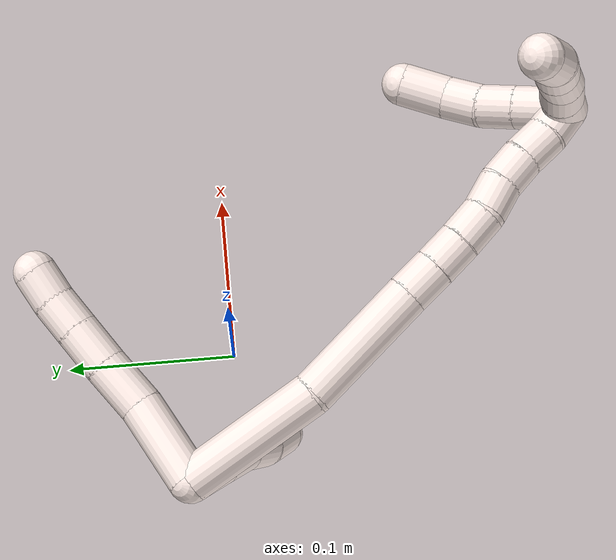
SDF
<sdf version="1.7">
 <world name="default">
  <model name="11">
   <static>0</static>
   <link name="11">
    <collision name="collision-cylinder-e_1_2_8">
     <pose>0.022656 0.011937 0.000423 -1.53537 1.08562 -1.05453</pose>
     <geometry><cylinder><radius>0.0125</radius><length>0.051223</length></cylinder></geometry>
     <surface>
      <friction><ode><mu>1.16</mu><mu2>1.16</mu2><slip1>0</slip1><slip2>0</slip2></ode></friction>
      <contact><ode><kp>1e+06</kp><kd>1</kd><max_vel>0</max_vel><min_depth>0.001</min_depth></ode></contact>
     </surface>
    </collision>
    <visual name="visual-cylinder-e_1_2_8">
     <pose>0.022656 0.011937 0.000423 -1.53537 1.08562 -1.05453</pose>
     <geometry><cylinder><radius>0.0125</radius><length>0.051223</length></cylinder></geometry>
     <material><ambient>1 0.933333 0.909804 1</ambient></material>
    </visual>
    <collision name="collision-cylinder-e_2_8_9">
     <pose>0.058511 0.031541 0.003684 -1.21634 1.01626 -0.739752</pose>
     <geometry><cylinder><radius>0.0125</radius><length>0.031053</length></cylinder></geometry>
     <surface>
      <friction><ode><mu>1.16</mu><mu2>1.16</mu2><slip1>0</slip1><slip2>0</slip2></ode></friction>
      <contact><ode><kp>1e+06</kp><kd>1</kd><max_vel>0</max_vel><min_depth>0.001</min_depth></ode></contact>
     </surface>
    </collision>
    <visual name="visual-cylinder-e_2_8_9">
     <pose>0.058511 0.031541 0.003684 -1.21634 1.01626 -0.739752</pose>
     <geometry><cylinder><radius>0.0125</radius><length>0.031053</length></cylinder></geometry>
     <material><ambient>1 0.933333 0.909804 1</ambient></material>
    </visual>
    <collision name="collision-cylinder-e_3_9_10">
     <pose>0.083178 0.045183 0.008929 -1.18777 1.05895 -0.752606</pose>
     <geometry><cylinder><radius>0.0125</radius><length>0.026304</length></cylinder></geometry>
     <surface>
      <friction><ode><mu>1.16</mu><mu2>1.16</mu2><slip1>0</slip1><slip2>0</slip2></ode></friction>
      <contact><ode><kp>1e+06</kp><kd>1</kd><max_vel>0</max_vel><min_depth>0.001</min_depth></ode></contact>
     </surface>
    </collision>
    <visual name="visual-cylinder-e_3_9_10">
     <pose>0.083178 0.045183 0.008929 -1.18777 1.05895 -0.752606</pose>
     <geometry><cylinder><radius>0.0125</radius><length>0.026304</length></cylinder></geometry>
     <material><ambient>1 0.933333 0.909804 1</ambient></material>
    </visual>
    <collision name="collision-cylinder-e_4_10_11">
     <pose>0.103967 0.055997 0.013297 -1.18585 1.06026 -0.75222</pose>
     <geometry><cylinder><radius>0.0125</radius><length>0.021371</length></cylinder></geometry>
     <surface>
      <friction><ode><mu>1.16</mu><mu2>1.16</mu2><slip1>0</slip1><slip2>0</slip2></ode></friction>
      <contact><ode><kp>1e+06</kp><kd>1</kd><max_vel>0</max_vel><min_depth>0.001</min_depth></ode></contact>
     </surface>
    </collision>
    <visual name="visual-cylinder-e_4_10_11">
     <pose>0.103967 0.055997 0.013297 -1.18585 1.06026 -0.75222</pose>
     <geometry><cylinder><radius>0.0125</radius><length>0.021371</length></cylinder></geometry>
     <material><ambient>1 0.933333 0.909804 1</ambient></material>
    </visual>
    <collision name="collision-cylinder-e_5_11_6">
     <pose>0.12253 0.064166 0.017262 -1.02884 1.17266 -0.718275</pose>
     <geometry><cylinder><radius>0.0125</radius><length>0.020049</length></cylinder></geometry>
     <surface>
      <friction><ode><mu>1.16</mu><mu2>1.16</mu2><slip1>0</slip1><slip2>0</slip2></ode></friction>
      <contact><ode><kp>1e+06</kp><kd>1</kd><max_vel>0</max_vel><min_depth>0.001</min_depth></ode></contact>
     </surface>
    </collision>
    <visual name="visual-cylinder-e_5_11_6">
     <pose>0.12253 0.064166 0.017262 -1.02884 1.17266 -0.718275</pose>
     <geometry><cylinder><radius>0.0125</radius><length>0.020049</length></cylinder></geometry>
     <material><ambient>1 0.933333 0.909804 1</ambient></material>
    </visual>
    <collision name="collision-cylinder-e_1_2_12">
     <pose>0.003013 0.001083 -0.015198 -3.07046 0.19521 -2.44446</pose>
     <geometry><cylinder><radius>0.0125</radius><length>0.031064</length></cylinder></geometry>
     <surface>
      <friction><ode><mu>1.16</mu><mu2>1.16</mu2><slip1>0</slip1><slip2>0</slip2></ode></friction>
      <contact><ode><kp>1e+06</kp><kd>1</kd><max_vel>0</max_vel><min_depth>0.001</min_depth></ode></contact>
     </surface>
    </collision>
    <visual name="visual-cylinder-e_1_2_12">
     <pose>0.003013 0.001083 -0.015198 -3.07046 0.19521 -2.44446</pose>
     <geometry><cylinder><radius>0.0125</radius><length>0.031064</length></cylinder></geometry>
     <material><ambient>1 0.933333 0.909804 1</ambient></material>
    </visual>
    <collision name="collision-cylinder-e_2_12_13">
     <pose>0.00854 0.001111 -0.041045 3.04288 0.230782 2.33586</pose>
     <geometry><cylinder><radius>0.0125</radius><length>0.021983</length></cylinder></geometry>
     <surface>
      <friction><ode><mu>1.16</mu><mu2>1.16</mu2><slip1>0</slip1><slip2>0</slip2></ode></friction>
      <contact><ode><kp>1e+06</kp><kd>1</kd><max_vel>0</max_vel><min_depth>0.001</min_depth></ode></contact>
     </surface>
    </collision>
    <visual name="visual-cylinder-e_2_12_13">
     <pose>0.00854 0.001111 -0.041045 3.04288 0.230782 2.33586</pose>
     <geometry><cylinder><radius>0.0125</radius><length>0.021983</length></cylinder></geometry>
     <material><ambient>1 0.933333 0.909804 1</ambient></material>
    </visual>
    <collision name="collision-cylinder-e_3_13_14">
     <pose>0.011013 0.00152 -0.063073 -3.01372 -0.003537 0.055237</pose>
     <geometry><cylinder><radius>0.0125</radius><length>0.022949</length></cylinder></geometry>
     <surface>
      <friction><ode><mu>1.16</mu><mu2>1.16</mu2><slip1>0</slip1><slip2>0</slip2></ode></friction>
      <contact><ode><kp>1e+06</kp><kd>1</kd><max_vel>0</max_vel><min_depth>0.001</min_depth></ode></contact>
     </surface>
    </collision>
    <visual name="visual-cylinder-e_3_13_14">
     <pose>0.011013 0.00152 -0.063073 -3.01372 -0.003537 0.055237</pose>
     <geometry><cylinder><radius>0.0125</radius><length>0.022949</length></cylinder></geometry>
     <material><ambient>1 0.933333 0.909804 1</ambient></material>
    </visual>
    <collision name="collision-cylinder-e_4_14_5">
     <pose>0.013296 0.004598 -0.086118 -3.00403 0.194844 -1.91356</pose>
     <geometry><cylinder><radius>0.0125</radius><length>0.024004</length></cylinder></geometry>
     <surface>
      <friction><ode><mu>1.16</mu><mu2>1.16</mu2><slip1>0</slip1><slip2>0</slip2></ode></friction>
      <contact><ode><kp>1e+06</kp><kd>1</kd><max_vel>0</max_vel><min_depth>0.001</min_depth></ode></contact>
     </surface>
    </collision>
    <visual name="visual-cylinder-e_4_14_5">
     <pose>0.013296 0.004598 -0.086118 -3.00403 0.194844 -1.91356</pose>
     <geometry><cylinder><radius>0.0125</radius><length>0.024004</length></cylinder></geometry>
     <material><ambient>1 0.933333 0.909804 1</ambient></material>
    </visual>
    <collision name="collision-cylinder-e_1_2_15">
     <pose>0.016969 -0.031751 -0.019763 2.12755 0.425955 0.742557</pose>
     <geometry><cylinder><radius>0.0125</radius><length>0.082137</length></cylinder></geometry>
     <surface>
      <friction><ode><mu>1.16</mu><mu2>1.16</mu2><slip1>0</slip1><slip2>0</slip2></ode></friction>
      <contact><ode><kp>1e+06</kp><kd>1</kd><max_vel>0</max_vel><min_depth>0.001</min_depth></ode></contact>
     </surface>
    </collision>
    <visual name="visual-cylinder-e_1_2_15">
     <pose>0.016969 -0.031751 -0.019763 2.12755 0.425955 0.742557</pose>
     <geometry><cylinder><radius>0.0125</radius><length>0.082137</length></cylinder></geometry>
     <material><ambient>1 0.933333 0.909804 1</ambient></material>
    </visual>
    <collision name="collision-cylinder-e_2_15_16">
     <pose>0.055516 -0.08777 -0.058763 2.24105 0.608552 1.15224</pose>
     <geometry><cylinder><radius>0.0125</radius><length>0.07549</length></cylinder></geometry>
     <surface>
      <friction><ode><mu>1.16</mu><mu2>1.16</mu2><slip1>0</slip1><slip2>0</slip2></ode></friction>
      <contact><ode><kp>1e+06</kp><kd>1</kd><max_vel>0</max_vel><min_depth>0.001</min_depth></ode></contact>
     </surface>
    </collision>
    <visual name="visual-cylinder-e_2_15_16">
     <pose>0.055516 -0.08777 -0.058763 2.24105 0.608552 1.15224</pose>
     <geometry><cylinder><radius>0.0125</radius><length>0.07549</length></cylinder></geometry>
     <material><ambient>1 0.933333 0.909804 1</ambient></material>
    </visual>
    <collision name="collision-cylinder-e_3_16_17">
     <pose>0.083092 -0.119099 -0.083453 2.22851 0.591975 1.11127</pose>
     <geometry><cylinder><radius>0.0125</radius><length>0.021498</length></cylinder></geometry>
     <surface>
      <friction><ode><mu>1.16</mu><mu2>1.16</mu2><slip1>0</slip1><slip2>0</slip2></ode></friction>
      <contact><ode><kp>1e+06</kp><kd>1</kd><max_vel>0</max_vel><min_depth>0.001</min_depth></ode></contact>
     </surface>
    </collision>
    <visual name="visual-cylinder-e_3_16_17">
     <pose>0.083092 -0.119099 -0.083453 2.22851 0.591975 1.11127</pose>
     <geometry><cylinder><radius>0.0125</radius><length>0.021498</length></cylinder></geometry>
     <material><ambient>1 0.933333 0.909804 1</ambient></material>
    </visual>
    <collision name="collision-cylinder-e_4_17_18">
     <pose>0.094946 -0.13269 -0.094046 2.23749 0.613742 1.15636</pose>
     <geometry><cylinder><radius>0.0125</radius><length>0.020333</length></cylinder></geometry>
     <surface>
      <friction><ode><mu>1.16</mu><mu2>1.16</mu2><slip1>0</slip1><slip2>0</slip2></ode></friction>
      <contact><ode><kp>1e+06</kp><kd>1</kd><max_vel>0</max_vel><min_depth>0.001</min_depth></ode></contact>
     </surface>
    </collision>
    <visual name="visual-cylinder-e_4_17_18">
     <pose>0.094946 -0.13269 -0.094046 2.23749 0.613742 1.15636</pose>
     <geometry><cylinder><radius>0.0125</radius><length>0.020333</length></cylinder></geometry>
     <material><ambient>1 0.933333 0.909804 1</ambient></material>
    </visual>
    <collision name="collision-cylinder-e_5_18_19">
     <pose>0.107072 -0.145308 -0.104514 2.28991 0.659426 1.29266</pose>
     <geometry><cylinder><radius>0.0125</radius><length>0.020472</length></cylinder></geometry>
     <surface>
      <friction><ode><mu>1.16</mu><mu2>1.16</mu2><slip1>0</slip1><slip2>0</slip2></ode></friction>
      <contact><ode><kp>1e+06</kp><kd>1</kd><max_vel>0</max_vel><min_depth>0.001</min_depth></ode></contact>
     </surface>
    </collision>
    <visual name="visual-cylinder-e_5_18_19">
     <pose>0.107072 -0.145308 -0.104514 2.28991 0.659426 1.29266</pose>
     <geometry><cylinder><radius>0.0125</radius><length>0.020472</length></cylinder></geometry>
     <material><ambient>1 0.933333 0.909804 1</ambient></material>
    </visual>
    <collision name="collision-cylinder-e_6_19_20">
     <pose>0.120778 -0.155225 -0.115366 2.53521 0.835787 1.9141</pose>
     <geometry><cylinder><radius>0.0125</radius><length>0.020045</length></cylinder></geometry>
     <surface>
      <friction><ode><mu>1.16</mu><mu2>1.16</mu2><slip1>0</slip1><slip2>0</slip2></ode></friction>
      <contact><ode><kp>1e+06</kp><kd>1</kd><max_vel>0</max_vel><min_depth>0.001</min_depth></ode></contact>
     </surface>
    </collision>
    <visual name="visual-cylinder-e_6_19_20">
     <pose>0.120778 -0.155225 -0.115366 2.53521 0.835787 1.9141</pose>
     <geometry><cylinder><radius>0.0125</radius><length>0.020045</length></cylinder></geometry>
     <material><ambient>1 0.933333 0.909804 1</ambient></material>
    </visual>
    <collision name="collision-cylinder-e_7_20_21">
     <pose>0.134279 -0.164084 -0.127061 2.45796 0.651142 1.51832</pose>
     <geometry><cylinder><radius>0.0125</radius><length>0.020018</length></cylinder></geometry>
     <surface>
      <friction><ode><mu>1.16</mu><mu2>1.16</mu2><slip1>0</slip1><slip2>0</slip2></ode></friction>
      <contact><ode><kp>1e+06</kp><kd>1</kd><max_vel>0</max_vel><min_depth>0.001</min_depth></ode></contact>
     </surface>
    </collision>
    <visual name="visual-cylinder-e_7_20_21">
     <pose>0.134279 -0.164084 -0.127061 2.45796 0.651142 1.51832</pose>
     <geometry><cylinder><radius>0.0125</radius><length>0.020018</length></cylinder></geometry>
     <material><ambient>1 0.933333 0.909804 1</ambient></material>
    </visual>
    <collision name="collision-cylinder-e_8_21_22">
     <pose>0.14561 -0.174731 -0.139617 2.4198 0.554231 1.29162</pose>
     <geometry><cylinder><radius>0.0125</radius><length>0.020004</length></cylinder></geometry>
     <surface>
      <friction><ode><mu>1.16</mu><mu2>1.16</mu2><slip1>0</slip1><slip2>0</slip2></ode></friction>
      <contact><ode><kp>1e+06</kp><kd>1</kd><max_vel>0</max_vel><min_depth>0.001</min_depth></ode></contact>
     </surface>
    </collision>
    <visual name="visual-cylinder-e_8_21_22">
     <pose>0.14561 -0.174731 -0.139617 2.4198 0.554231 1.29162</pose>
     <geometry><cylinder><radius>0.0125</radius><length>0.020004</length></cylinder></geometry>
     <material><ambient>1 0.933333 0.909804 1</ambient></material>
    </visual>
    <collision name="collision-cylinder-e_9_22_1">
     <pose>0.157392 -0.184851 -0.152107 2.50648 0.709919 1.69071</pose>
     <geometry><cylinder><radius>0.0125</radius><length>0.020003</length></cylinder></geometry>
     <surface>
      <friction><ode><mu>1.16</mu><mu2>1.16</mu2><slip1>0</slip1><slip2>0</slip2></ode></friction>
      <contact><ode><kp>1e+06</kp><kd>1</kd><max_vel>0</max_vel><min_depth>0.001</min_depth></ode></contact>
     </surface>
    </collision>
    <visual name="visual-cylinder-e_9_22_1">
     <pose>0.157392 -0.184851 -0.152107 2.50648 0.709919 1.69071</pose>
     <geometry><cylinder><radius>0.0125</radius><length>0.020003</length></cylinder></geometry>
     <material><ambient>1 0.933333 0.909804 1</ambient></material>
    </visual>
    <collision name="collision-cylinder-e_1_1_23">
     <pose>0.166001 -0.193442 -0.149331 0.431664 0.210584 0.046333</pose>
     <geometry><cylinder><radius>0.0125</radius><length>0.02</length></cylinder></geometry>
     <surface>
      <friction><ode><mu>1.16</mu><mu2>1.16</mu2><slip1>0</slip1><slip2>0</slip2></ode></friction>
      <contact><ode><kp>1e+06</kp><kd>1</kd><max_vel>0</max_vel><min_depth>0.001</min_depth></ode></contact>
     </surface>
    </collision>
    <visual name="visual-cylinder-e_1_1_23">
     <pose>0.166001 -0.193442 -0.149331 0.431664 0.210584 0.046333</pose>
     <geometry><cylinder><radius>0.0125</radius><length>0.02</length></cylinder></geometry>
     <material><ambient>1 0.933333 0.909804 1</ambient></material>
    </visual>
    <collision name="collision-cylinder-e_2_23_24">
     <pose>0.170434 -0.202463 -0.132069 0.531744 0.236409 0.064658</pose>
     <geometry><cylinder><radius>0.0125</radius><length>0.02</length></cylinder></geometry>
     <surface>
      <friction><ode><mu>1.16</mu><mu2>1.16</mu2><slip1>0</slip1><slip2>0</slip2></ode></friction>
      <contact><ode><kp>1e+06</kp><kd>1</kd><max_vel>0</max_vel><min_depth>0.001</min_depth></ode></contact>
     </surface>
    </collision>
    <visual name="visual-cylinder-e_2_23_24">
     <pose>0.170434 -0.202463 -0.132069 0.531744 0.236409 0.064658</pose>
     <geometry><cylinder><radius>0.0125</radius><length>0.02</length></cylinder></geometry>
     <material><ambient>1 0.933333 0.909804 1</ambient></material>
    </visual>
    <collision name="collision-cylinder-e_3_24_25">
     <pose>0.174214 -0.211184 -0.114549 0.393215 0.14434 0.028798</pose>
     <geometry><cylinder><radius>0.0125</radius><length>0.02</length></cylinder></geometry>
     <surface>
      <friction><ode><mu>1.16</mu><mu2>1.16</mu2><slip1>0</slip1><slip2>0</slip2></ode></friction>
      <contact><ode><kp>1e+06</kp><kd>1</kd><max_vel>0</max_vel><min_depth>0.001</min_depth></ode></contact>
     </surface>
    </collision>
    <visual name="visual-cylinder-e_3_24_25">
     <pose>0.174214 -0.211184 -0.114549 0.393215 0.14434 0.028798</pose>
     <geometry><cylinder><radius>0.0125</radius><length>0.02</length></cylinder></geometry>
     <material><ambient>1 0.933333 0.909804 1</ambient></material>
    </visual>
    <collision name="collision-cylinder-e_4_25_26">
     <pose>0.176621 -0.219381 -0.096483 0.458471 0.097007 0.022652</pose>
     <geometry><cylinder><radius>0.0125</radius><length>0.02</length></cylinder></geometry>
     <surface>
      <friction><ode><mu>1.16</mu><mu2>1.16</mu2><slip1>0</slip1><slip2>0</slip2></ode></friction>
      <contact><ode><kp>1e+06</kp><kd>1</kd><max_vel>0</max_vel><min_depth>0.001</min_depth></ode></contact>
     </surface>
    </collision>
    <visual name="visual-cylinder-e_4_25_26">
     <pose>0.176621 -0.219381 -0.096483 0.458471 0.097007 0.022652</pose>
     <geometry><cylinder><radius>0.0125</radius><length>0.02</length></cylinder></geometry>
     <material><ambient>1 0.933333 0.909804 1</ambient></material>
    </visual>
    <collision name="collision-cylinder-e_5_26_4">
     <pose>0.178496 -0.225445 -0.077739 0.167433 0.090793 0.007624</pose>
     <geometry><cylinder><radius>0.0125</radius><length>0.02</length></cylinder></geometry>
     <surface>
      <friction><ode><mu>1.16</mu><mu2>1.16</mu2><slip1>0</slip1><slip2>0</slip2></ode></friction>
      <contact><ode><kp>1e+06</kp><kd>1</kd><max_vel>0</max_vel><min_depth>0.001</min_depth></ode></contact>
     </surface>
    </collision>
    <visual name="visual-cylinder-e_5_26_4">
     <pose>0.178496 -0.225445 -0.077739 0.167433 0.090793 0.007624</pose>
     <geometry><cylinder><radius>0.0125</radius><length>0.02</length></cylinder></geometry>
     <material><ambient>1 0.933333 0.909804 1</ambient></material>
    </visual>
    <collision name="collision-cylinder-e_1_1_27">
     <pose>0.167966 -0.175756 -0.155875 -1.40048 0.285925 -0.241424</pose>
     <geometry><cylinder><radius>0.0125</radius><length>0.028755</length></cylinder></geometry>
     <surface>
      <friction><ode><mu>1.16</mu><mu2>1.16</mu2><slip1>0</slip1><slip2>0</slip2></ode></friction>
      <contact><ode><kp>1e+06</kp><kd>1</kd><max_vel>0</max_vel><min_depth>0.001</min_depth></ode></contact>
     </surface>
    </collision>
    <visual name="visual-cylinder-e_1_1_27">
     <pose>0.167966 -0.175756 -0.155875 -1.40048 0.285925 -0.241424</pose>
     <geometry><cylinder><radius>0.0125</radius><length>0.028755</length></cylinder></geometry>
     <material><ambient>1 0.933333 0.909804 1</ambient></material>
    </visual>
    <collision name="collision-cylinder-e_2_27_28">
     <pose>0.175051 -0.151965 -0.151768 -1.39898 0.284751 -0.240065</pose>
     <geometry><cylinder><radius>0.0125</radius><length>0.021567</length></cylinder></geometry>
     <surface>
      <friction><ode><mu>1.16</mu><mu2>1.16</mu2><slip1>0</slip1><slip2>0</slip2></ode></friction>
      <contact><ode><kp>1e+06</kp><kd>1</kd><max_vel>0</max_vel><min_depth>0.001</min_depth></ode></contact>
     </surface>
    </collision>
    <visual name="visual-cylinder-e_2_27_28">
     <pose>0.175051 -0.151965 -0.151768 -1.39898 0.284751 -0.240065</pose>
     <geometry><cylinder><radius>0.0125</radius><length>0.021567</length></cylinder></geometry>
     <material><ambient>1 0.933333 0.909804 1</ambient></material>
    </visual>
    <collision name="collision-cylinder-e_3_28_29">
     <pose>0.183147 -0.1319 -0.148764 -1.44641 0.471198 -0.417645</pose>
     <geometry><cylinder><radius>0.0125</radius><length>0.022322</length></cylinder></geometry>
     <surface>
      <friction><ode><mu>1.16</mu><mu2>1.16</mu2><slip1>0</slip1><slip2>0</slip2></ode></friction>
      <contact><ode><kp>1e+06</kp><kd>1</kd><max_vel>0</max_vel><min_depth>0.001</min_depth></ode></contact>
     </surface>
    </collision>
    <visual name="visual-cylinder-e_3_28_29">
     <pose>0.183147 -0.1319 -0.148764 -1.44641 0.471198 -0.417645</pose>
     <geometry><cylinder><radius>0.0125</radius><length>0.022322</length></cylinder></geometry>
     <material><ambient>1 0.933333 0.909804 1</ambient></material>
    </visual>
    <collision name="collision-cylinder-e_4_29_3">
     <pose>0.194881 -0.11137 -0.142151 -1.10351 0.509201 -0.317679</pose>
     <geometry><cylinder><radius>0.0125</radius><length>0.027355</length></cylinder></geometry>
     <surface>
      <friction><ode><mu>1.16</mu><mu2>1.16</mu2><slip1>0</slip1><slip2>0</slip2></ode></friction>
      <contact><ode><kp>1e+06</kp><kd>1</kd><max_vel>0</max_vel><min_depth>0.001</min_depth></ode></contact>
     </surface>
    </collision>
    <visual name="visual-cylinder-e_4_29_3">
     <pose>0.194881 -0.11137 -0.142151 -1.10351 0.509201 -0.317679</pose>
     <geometry><cylinder><radius>0.0125</radius><length>0.027355</length></cylinder></geometry>
     <material><ambient>1 0.933333 0.909804 1</ambient></material>
    </visual>
    <collision name="collision-sphere-3">
     <pose>0.201548 -0.100708 -0.136771 0 -0 0</pose>
     <geometry><sphere><radius>0.0125</radius></sphere></geometry>
     <surface>
      <friction><ode><mu>1.16</mu><mu2>1.16</mu2><slip1>0</slip1><slip2>0</slip2></ode></friction>
      <contact><ode><kp>1e+06</kp><kd>1</kd><max_vel>0</max_vel><min_depth>0.001</min_depth></ode></contact>
     </surface>
    </collision>
    <visual name="visual-sphere-3">
     <pose>0.201548 -0.100708 -0.136771 0 -0 0</pose>
     <geometry><sphere><radius>0.0125</radius></sphere></geometry>
     <material><ambient>1 0.933333 0.909804 1</ambient></material>
    </visual>
    <collision name="collision-sphere-29">
     <pose>0.188213 -0.122032 -0.147531 0 -0 0</pose>
     <geometry><sphere><radius>0.0125</radius></sphere></geometry>
     <surface>
      <friction><ode><mu>1.16</mu><mu2>1.16</mu2><slip1>0</slip1><slip2>0</slip2></ode></friction>
      <contact><ode><kp>1e+06</kp><kd>1</kd><max_vel>0</max_vel><min_depth>0.001</min_depth></ode></contact>
     </surface>
    </collision>
    <visual name="visual-sphere-29">
     <pose>0.188213 -0.122032 -0.147531 0 -0 0</pose>
     <geometry><sphere><radius>0.0125</radius></sphere></geometry>
     <material><ambient>1 0.933333 0.909804 1</ambient></material>
    </visual>
    <collision name="collision-sphere-28">
     <pose>0.17808 -0.141768 -0.149998 0 -0 0</pose>
     <geometry><sphere><radius>0.0125</radius></sphere></geometry>
     <surface>
      <friction><ode><mu>1.16</mu><mu2>1.16</mu2><slip1>0</slip1><slip2>0</slip2></ode></friction>
      <contact><ode><kp>1e+06</kp><kd>1</kd><max_vel>0</max_vel><min_depth>0.001</min_depth></ode></contact>
     </surface>
    </collision>
    <visual name="visual-sphere-28">
     <pose>0.17808 -0.141768 -0.149998 0 -0 0</pose>
     <geometry><sphere><radius>0.0125</radius></sphere></geometry>
     <material><ambient>1 0.933333 0.909804 1</ambient></material>
    </visual>
    <collision name="collision-sphere-27">
     <pose>0.172021 -0.162162 -0.153537 0 -0 0</pose>
     <geometry><sphere><radius>0.0125</radius></sphere></geometry>
     <surface>
      <friction><ode><mu>1.16</mu><mu2>1.16</mu2><slip1>0</slip1><slip2>0</slip2></ode></friction>
      <contact><ode><kp>1e+06</kp><kd>1</kd><max_vel>0</max_vel><min_depth>0.001</min_depth></ode></contact>
     </surface>
    </collision>
    <visual name="visual-sphere-27">
     <pose>0.172021 -0.162162 -0.153537 0 -0 0</pose>
     <geometry><sphere><radius>0.0125</radius></sphere></geometry>
     <material><ambient>1 0.933333 0.909804 1</ambient></material>
    </visual>
    <collision name="collision-sphere-4">
     <pose>0.179403 -0.227105 -0.067919 0 -0 0</pose>
     <geometry><sphere><radius>0.0125</radius></sphere></geometry>
     <surface>
      <friction><ode><mu>1.16</mu><mu2>1.16</mu2><slip1>0</slip1><slip2>0</slip2></ode></friction>
      <contact><ode><kp>1e+06</kp><kd>1</kd><max_vel>0</max_vel><min_depth>0.001</min_depth></ode></contact>
     </surface>
    </collision>
    <visual name="visual-sphere-4">
     <pose>0.179403 -0.227105 -0.067919 0 -0 0</pose>
     <geometry><sphere><radius>0.0125</radius></sphere></geometry>
     <material><ambient>1 0.933333 0.909804 1</ambient></material>
    </visual>
    <collision name="collision-sphere-26">
     <pose>0.17759 -0.223786 -0.087558 0 -0 0</pose>
     <geometry><sphere><radius>0.0125</radius></sphere></geometry>
     <surface>
      <friction><ode><mu>1.16</mu><mu2>1.16</mu2><slip1>0</slip1><slip2>0</slip2></ode></friction>
      <contact><ode><kp>1e+06</kp><kd>1</kd><max_vel>0</max_vel><min_depth>0.001</min_depth></ode></contact>
     </surface>
    </collision>
    <visual name="visual-sphere-26">
     <pose>0.17759 -0.223786 -0.087558 0 -0 0</pose>
     <geometry><sphere><radius>0.0125</radius></sphere></geometry>
     <material><ambient>1 0.933333 0.909804 1</ambient></material>
    </visual>
    <collision name="collision-sphere-25">
     <pose>0.175653 -0.214976 -0.105408 0 -0 0</pose>
     <geometry><sphere><radius>0.0125</radius></sphere></geometry>
     <surface>
      <friction><ode><mu>1.16</mu><mu2>1.16</mu2><slip1>0</slip1><slip2>0</slip2></ode></friction>
      <contact><ode><kp>1e+06</kp><kd>1</kd><max_vel>0</max_vel><min_depth>0.001</min_depth></ode></contact>
     </surface>
    </collision>
    <visual name="visual-sphere-25">
     <pose>0.175653 -0.214976 -0.105408 0 -0 0</pose>
     <geometry><sphere><radius>0.0125</radius></sphere></geometry>
     <material><ambient>1 0.933333 0.909804 1</ambient></material>
    </visual>
    <collision name="collision-sphere-24">
     <pose>0.172776 -0.207392 -0.12369 0 -0 0</pose>
     <geometry><sphere><radius>0.0125</radius></sphere></geometry>
     <surface>
      <friction><ode><mu>1.16</mu><mu2>1.16</mu2><slip1>0</slip1><slip2>0</slip2></ode></friction>
      <contact><ode><kp>1e+06</kp><kd>1</kd><max_vel>0</max_vel><min_depth>0.001</min_depth></ode></contact>
     </surface>
    </collision>
    <visual name="visual-sphere-24">
     <pose>0.172776 -0.207392 -0.12369 0 -0 0</pose>
     <geometry><sphere><radius>0.0125</radius></sphere></geometry>
     <material><ambient>1 0.933333 0.909804 1</ambient></material>
    </visual>
    <collision name="collision-sphere-23">
     <pose>0.168092 -0.197533 -0.140449 0 -0 0</pose>
     <geometry><sphere><radius>0.0125</radius></sphere></geometry>
     <surface>
      <friction><ode><mu>1.16</mu><mu2>1.16</mu2><slip1>0</slip1><slip2>0</slip2></ode></friction>
      <contact><ode><kp>1e+06</kp><kd>1</kd><max_vel>0</max_vel><min_depth>0.001</min_depth></ode></contact>
     </surface>
    </collision>
    <visual name="visual-sphere-23">
     <pose>0.168092 -0.197533 -0.140449 0 -0 0</pose>
     <geometry><sphere><radius>0.0125</radius></sphere></geometry>
     <material><ambient>1 0.933333 0.909804 1</ambient></material>
    </visual>
    <collision name="collision-sphere-1">
     <pose>0.163911 -0.189351 -0.158213 0 -0 0</pose>
     <geometry><sphere><radius>0.0125</radius></sphere></geometry>
     <surface>
      <friction><ode><mu>1.16</mu><mu2>1.16</mu2><slip1>0</slip1><slip2>0</slip2></ode></friction>
      <contact><ode><kp>1e+06</kp><kd>1</kd><max_vel>0</max_vel><min_depth>0.001</min_depth></ode></contact>
     </surface>
    </collision>
    <visual name="visual-sphere-1">
     <pose>0.163911 -0.189351 -0.158213 0 -0 0</pose>
     <geometry><sphere><radius>0.0125</radius></sphere></geometry>
     <material><ambient>1 0.933333 0.909804 1</ambient></material>
    </visual>
    <collision name="collision-sphere-22">
     <pose>0.150873 -0.18035 -0.146001 0 -0 0</pose>
     <geometry><sphere><radius>0.0125</radius></sphere></geometry>
     <surface>
      <friction><ode><mu>1.16</mu><mu2>1.16</mu2><slip1>0</slip1><slip2>0</slip2></ode></friction>
      <contact><ode><kp>1e+06</kp><kd>1</kd><max_vel>0</max_vel><min_depth>0.001</min_depth></ode></contact>
     </surface>
    </collision>
    <visual name="visual-sphere-22">
     <pose>0.150873 -0.18035 -0.146001 0 -0 0</pose>
     <geometry><sphere><radius>0.0125</radius></sphere></geometry>
     <material><ambient>1 0.933333 0.909804 1</ambient></material>
    </visual>
    <collision name="collision-sphere-21">
     <pose>0.140346 -0.169112 -0.133233 0 -0 0</pose>
     <geometry><sphere><radius>0.0125</radius></sphere></geometry>
     <surface>
      <friction><ode><mu>1.16</mu><mu2>1.16</mu2><slip1>0</slip1><slip2>0</slip2></ode></friction>
      <contact><ode><kp>1e+06</kp><kd>1</kd><max_vel>0</max_vel><min_depth>0.001</min_depth></ode></contact>
     </surface>
    </collision>
    <visual name="visual-sphere-21">
     <pose>0.140346 -0.169112 -0.133233 0 -0 0</pose>
     <geometry><sphere><radius>0.0125</radius></sphere></geometry>
     <material><ambient>1 0.933333 0.909804 1</ambient></material>
    </visual>
    <collision name="collision-sphere-6">
     <pose>0.131771 0.067496 0.019267 0 -0 0</pose>
     <geometry><sphere><radius>0.0125</radius></sphere></geometry>
     <surface>
      <friction><ode><mu>1.16</mu><mu2>1.16</mu2><slip1>0</slip1><slip2>0</slip2></ode></friction>
      <contact><ode><kp>1e+06</kp><kd>1</kd><max_vel>0</max_vel><min_depth>0.001</min_depth></ode></contact>
     </surface>
    </collision>
    <visual name="visual-sphere-6">
     <pose>0.131771 0.067496 0.019267 0 -0 0</pose>
     <geometry><sphere><radius>0.0125</radius></sphere></geometry>
     <material><ambient>1 0.933333 0.909804 1</ambient></material>
    </visual>
    <collision name="collision-sphere-11">
     <pose>0.11329 0.060837 0.015258 0 -0 0</pose>
     <geometry><sphere><radius>0.0125</radius></sphere></geometry>
     <surface>
      <friction><ode><mu>1.16</mu><mu2>1.16</mu2><slip1>0</slip1><slip2>0</slip2></ode></friction>
      <contact><ode><kp>1e+06</kp><kd>1</kd><max_vel>0</max_vel><min_depth>0.001</min_depth></ode></contact>
     </surface>
    </collision>
    <visual name="visual-sphere-11">
     <pose>0.11329 0.060837 0.015258 0 -0 0</pose>
     <geometry><sphere><radius>0.0125</radius></sphere></geometry>
     <material><ambient>1 0.933333 0.909804 1</ambient></material>
    </visual>
    <collision name="collision-sphere-10">
     <pose>0.094644 0.051158 0.011336 0 -0 0</pose>
     <geometry><sphere><radius>0.0125</radius></sphere></geometry>
     <surface>
      <friction><ode><mu>1.16</mu><mu2>1.16</mu2><slip1>0</slip1><slip2>0</slip2></ode></friction>
      <contact><ode><kp>1e+06</kp><kd>1</kd><max_vel>0</max_vel><min_depth>0.001</min_depth></ode></contact>
     </surface>
    </collision>
    <visual name="visual-sphere-10">
     <pose>0.094644 0.051158 0.011336 0 -0 0</pose>
     <geometry><sphere><radius>0.0125</radius></sphere></geometry>
     <material><ambient>1 0.933333 0.909804 1</ambient></material>
    </visual>
    <collision name="collision-sphere-9">
     <pose>0.071711 0.039208 0.006521 0 -0 0</pose>
     <geometry><sphere><radius>0.0125</radius></sphere></geometry>
     <surface>
      <friction><ode><mu>1.16</mu><mu2>1.16</mu2><slip1>0</slip1><slip2>0</slip2></ode></friction>
      <contact><ode><kp>1e+06</kp><kd>1</kd><max_vel>0</max_vel><min_depth>0.001</min_depth></ode></contact>
     </surface>
    </collision>
    <visual name="visual-sphere-9">
     <pose>0.071711 0.039208 0.006521 0 -0 0</pose>
     <geometry><sphere><radius>0.0125</radius></sphere></geometry>
     <material><ambient>1 0.933333 0.909804 1</ambient></material>
    </visual>
    <collision name="collision-sphere-2">
     <geometry><sphere><radius>0.0125</radius></sphere></geometry>
     <surface>
      <friction><ode><mu>1.16</mu><mu2>1.16</mu2><slip1>0</slip1><slip2>0</slip2></ode></friction>
      <contact><ode><kp>1e+06</kp><kd>1</kd><max_vel>0</max_vel><min_depth>0.001</min_depth></ode></contact>
     </surface>
    </collision>
    <visual name="visual-sphere-2">
     <geometry><sphere><radius>0.0125</radius></sphere></geometry>
     <material><ambient>1 0.933333 0.909804 1</ambient></material>
    </visual>
    <collision name="collision-sphere-19">
     <pose>0.113343 -0.151395 -0.109844 0 -0 0</pose>
     <geometry><sphere><radius>0.0125</radius></sphere></geometry>
     <surface>
      <friction><ode><mu>1.16</mu><mu2>1.16</mu2><slip1>0</slip1><slip2>0</slip2></ode></friction>
      <contact><ode><kp>1e+06</kp><kd>1</kd><max_vel>0</max_vel><min_depth>0.001</min_depth></ode></contact>
     </surface>
    </collision>
    <visual name="visual-sphere-19">
     <pose>0.113343 -0.151395 -0.109844 0 -0 0</pose>
     <geometry><sphere><radius>0.0125</radius></sphere></geometry>
     <material><ambient>1 0.933333 0.909804 1</ambient></material>
    </visual>
    <collision name="collision-sphere-8">
     <pose>0.045312 0.023874 0.000846 0 -0 0</pose>
     <geometry><sphere><radius>0.0125</radius></sphere></geometry>
     <surface>
      <friction><ode><mu>1.16</mu><mu2>1.16</mu2><slip1>0</slip1><slip2>0</slip2></ode></friction>
      <contact><ode><kp>1e+06</kp><kd>1</kd><max_vel>0</max_vel><min_depth>0.001</min_depth></ode></contact>
     </surface>
    </collision>
    <visual name="visual-sphere-8">
     <pose>0.045312 0.023874 0.000846 0 -0 0</pose>
     <geometry><sphere><radius>0.0125</radius></sphere></geometry>
     <material><ambient>1 0.933333 0.909804 1</ambient></material>
    </visual>
    <collision name="collision-sphere-12">
     <pose>0.006026 0.002166 -0.030397 0 -0 0</pose>
     <geometry><sphere><radius>0.0125</radius></sphere></geometry>
     <surface>
      <friction><ode><mu>1.16</mu><mu2>1.16</mu2><slip1>0</slip1><slip2>0</slip2></ode></friction>
      <contact><ode><kp>1e+06</kp><kd>1</kd><max_vel>0</max_vel><min_depth>0.001</min_depth></ode></contact>
     </surface>
    </collision>
    <visual name="visual-sphere-12">
     <pose>0.006026 0.002166 -0.030397 0 -0 0</pose>
     <geometry><sphere><radius>0.0125</radius></sphere></geometry>
     <material><ambient>1 0.933333 0.909804 1</ambient></material>
    </visual>
    <collision name="collision-sphere-13">
     <pose>0.011054 5.7e-05 -0.051693 0 -0 0</pose>
     <geometry><sphere><radius>0.0125</radius></sphere></geometry>
     <surface>
      <friction><ode><mu>1.16</mu><mu2>1.16</mu2><slip1>0</slip1><slip2>0</slip2></ode></friction>
      <contact><ode><kp>1e+06</kp><kd>1</kd><max_vel>0</max_vel><min_depth>0.001</min_depth></ode></contact>
     </surface>
    </collision>
    <visual name="visual-sphere-13">
     <pose>0.011054 5.7e-05 -0.051693 0 -0 0</pose>
     <geometry><sphere><radius>0.0125</radius></sphere></geometry>
     <material><ambient>1 0.933333 0.909804 1</ambient></material>
    </visual>
    <collision name="collision-sphere-14">
     <pose>0.010973 0.002983 -0.074454 0 -0 0</pose>
     <geometry><sphere><radius>0.0125</radius></sphere></geometry>
     <surface>
      <friction><ode><mu>1.16</mu><mu2>1.16</mu2><slip1>0</slip1><slip2>0</slip2></ode></friction>
      <contact><ode><kp>1e+06</kp><kd>1</kd><max_vel>0</max_vel><min_depth>0.001</min_depth></ode></contact>
     </surface>
    </collision>
    <visual name="visual-sphere-14">
     <pose>0.010973 0.002983 -0.074454 0 -0 0</pose>
     <geometry><sphere><radius>0.0125</radius></sphere></geometry>
     <material><ambient>1 0.933333 0.909804 1</ambient></material>
    </visual>
    <collision name="collision-sphere-5">
     <pose>0.01562 0.006213 -0.097782 0 -0 0</pose>
     <geometry><sphere><radius>0.0125</radius></sphere></geometry>
     <surface>
      <friction><ode><mu>1.16</mu><mu2>1.16</mu2><slip1>0</slip1><slip2>0</slip2></ode></friction>
      <contact><ode><kp>1e+06</kp><kd>1</kd><max_vel>0</max_vel><min_depth>0.001</min_depth></ode></contact>
     </surface>
    </collision>
    <visual name="visual-sphere-5">
     <pose>0.01562 0.006213 -0.097782 0 -0 0</pose>
     <geometry><sphere><radius>0.0125</radius></sphere></geometry>
     <material><ambient>1 0.933333 0.909804 1</ambient></material>
    </visual>
    <collision name="collision-sphere-15">
     <pose>0.033938 -0.063501 -0.039526 0 -0 0</pose>
     <geometry><sphere><radius>0.0125</radius></sphere></geometry>
     <surface>
      <friction><ode><mu>1.16</mu><mu2>1.16</mu2><slip1>0</slip1><slip2>0</slip2></ode></friction>
      <contact><ode><kp>1e+06</kp><kd>1</kd><max_vel>0</max_vel><min_depth>0.001</min_depth></ode></contact>
     </surface>
    </collision>
    <visual name="visual-sphere-15">
     <pose>0.033938 -0.063501 -0.039526 0 -0 0</pose>
     <geometry><sphere><radius>0.0125</radius></sphere></geometry>
     <material><ambient>1 0.933333 0.909804 1</ambient></material>
    </visual>
    <collision name="collision-sphere-16">
     <pose>0.077094 -0.11204 -0.078 0 -0 0</pose>
     <geometry><sphere><radius>0.0125</radius></sphere></geometry>
     <surface>
      <friction><ode><mu>1.16</mu><mu2>1.16</mu2><slip1>0</slip1><slip2>0</slip2></ode></friction>
      <contact><ode><kp>1e+06</kp><kd>1</kd><max_vel>0</max_vel><min_depth>0.001</min_depth></ode></contact>
     </surface>
    </collision>
    <visual name="visual-sphere-16">
     <pose>0.077094 -0.11204 -0.078 0 -0 0</pose>
     <geometry><sphere><radius>0.0125</radius></sphere></geometry>
     <material><ambient>1 0.933333 0.909804 1</ambient></material>
    </visual>
    <collision name="collision-sphere-17">
     <pose>0.08909 -0.126158 -0.088906 0 -0 0</pose>
     <geometry><sphere><radius>0.0125</radius></sphere></geometry>
     <surface>
      <friction><ode><mu>1.16</mu><mu2>1.16</mu2><slip1>0</slip1><slip2>0</slip2></ode></friction>
      <contact><ode><kp>1e+06</kp><kd>1</kd><max_vel>0</max_vel><min_depth>0.001</min_depth></ode></contact>
     </surface>
    </collision>
    <visual name="visual-sphere-17">
     <pose>0.08909 -0.126158 -0.088906 0 -0 0</pose>
     <geometry><sphere><radius>0.0125</radius></sphere></geometry>
     <material><ambient>1 0.933333 0.909804 1</ambient></material>
    </visual>
    <collision name="collision-sphere-18">
     <pose>0.100801 -0.139221 -0.099185 0 -0 0</pose>
     <geometry><sphere><radius>0.0125</radius></sphere></geometry>
     <surface>
      <friction><ode><mu>1.16</mu><mu2>1.16</mu2><slip1>0</slip1><slip2>0</slip2></ode></friction>
      <contact><ode><kp>1e+06</kp><kd>1</kd><max_vel>0</max_vel><min_depth>0.001</min_depth></ode></contact>
     </surface>
    </collision>
    <visual name="visual-sphere-18">
     <pose>0.100801 -0.139221 -0.099185 0 -0 0</pose>
     <geometry><sphere><radius>0.0125</radius></sphere></geometry>
     <material><ambient>1 0.933333 0.909804 1</ambient></material>
    </visual>
    <collision name="collision-sphere-20">
     <pose>0.128213 -0.159055 -0.120889 0 -0 0</pose>
     <geometry><sphere><radius>0.0125</radius></sphere></geometry>
     <surface>
      <friction><ode><mu>1.16</mu><mu2>1.16</mu2><slip1>0</slip1><slip2>0</slip2></ode></friction>
      <contact><ode><kp>1e+06</kp><kd>1</kd><max_vel>0</max_vel><min_depth>0.001</min_depth></ode></contact>
     </surface>
    </collision>
    <visual name="visual-sphere-20">
     <pose>0.128213 -0.159055 -0.120889 0 -0 0</pose>
     <geometry><sphere><radius>0.0125</radius></sphere></geometry>
     <material><ambient>1 0.933333 0.909804 1</ambient></material>
    </visual>
    <inertial>
     <pose>0.091601 -0.081267 -0.07047 0 -0 0</pose>
     <mass>0.75</mass>
     <inertia>
      <ixx>0.000149</ixx>
      <ixy>0</ixy>
      <ixz>0</ixz>
      <iyy>8.1e-05</iyy>
      <iyz>0</iyz>
      <izz>-3.2e-05</izz>
     </inertia>
    </inertial>
   </link>
   <pose>-0.092793 0.028021 0.085791 -0.681797 -0.233637 0.113211</pose>
  </model>
 </world>
</sdf>
